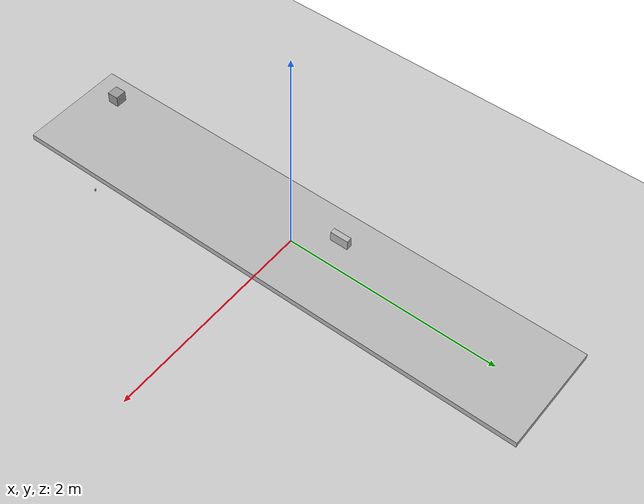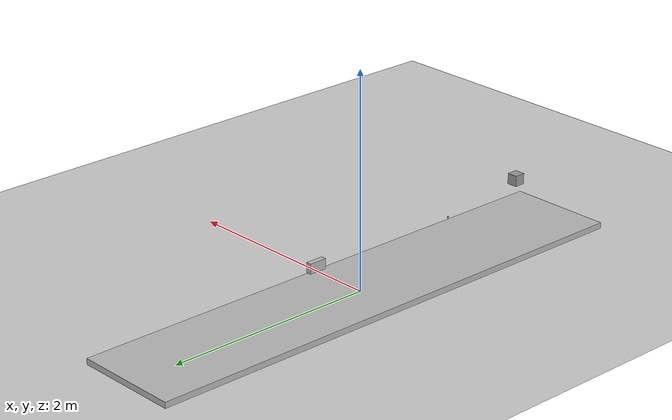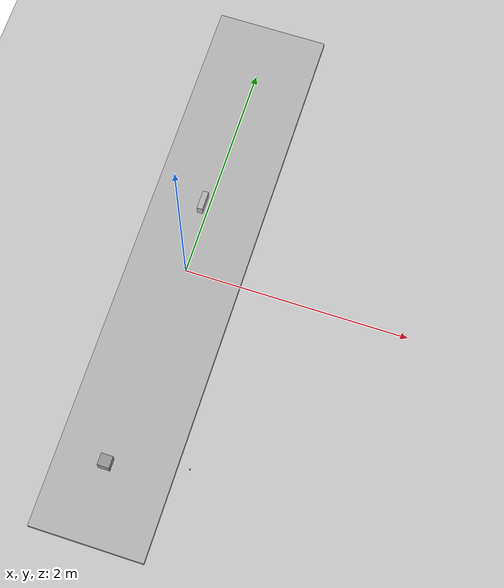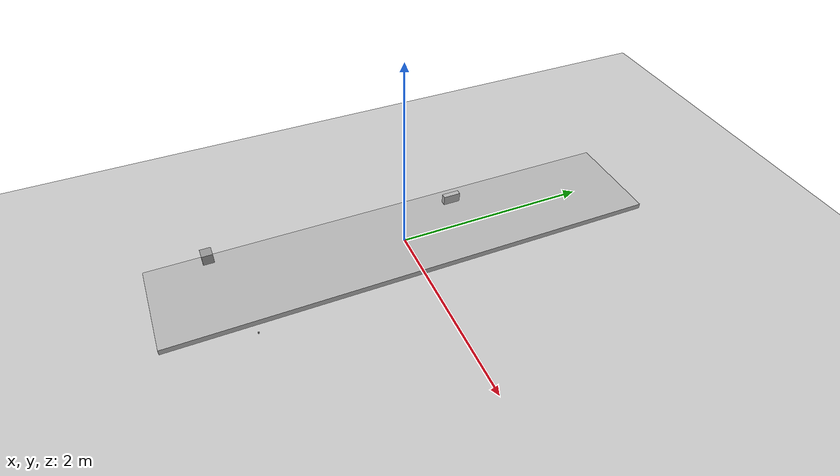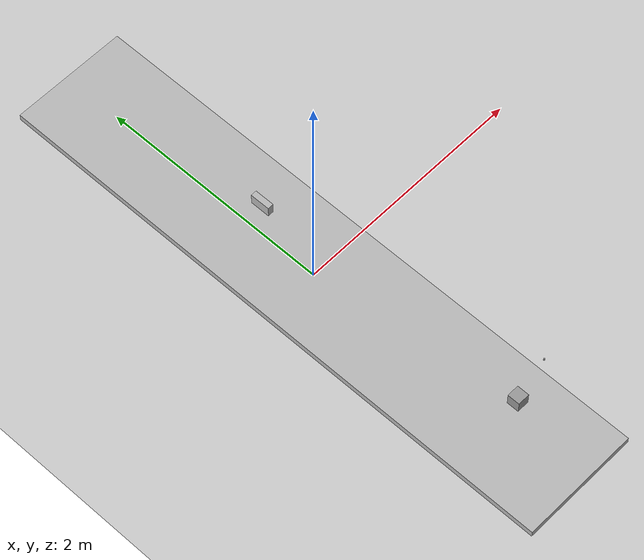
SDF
<sdf version="1.6">
 <world name="default">
  <plugin name="conveyor_controller" filename="libROSConveyorController.so"/>
  <include><uri>model://conveyor_belt</uri><pose>0 -2.5 0 0 0 0</pose></include>
  <include><uri>model://proximity_sensor</uri><pose>0.6 -1.65 -0.01 0 -1.5708 0</pose></include>
  <include><uri>model://laser_profiler</uri><pose>0 0.5 0.4 0 1.5708 -1.5708</pose></include>
  <light name="sun" type="directional">
   <pose>0 0 10 0 -0 0</pose>
   <diffuse>0.8 0.8 0.8 1</diffuse>
   <specular>0.1 0.1 0.1 1</specular>
   <attenuation>
    <range>1000</range>
    <constant>0.9</constant>
    <linear>0.01</linear>
    <quadratic>0.001</quadratic>
   </attenuation>
   <direction>-0.5 0.5 -1</direction>
  </light>
  <model name="ground_plane">
   <static>1</static>
   <link name="link">
    <collision name="collision">
     <geometry><plane><normal>0 0 1</normal><size>100 100</size></plane></geometry>
     <surface><friction><ode><mu>100</mu><mu2>50</mu2></ode></friction></surface>
    </collision>
    <visual name="visual">
     <cast_shadows>0</cast_shadows>
     <geometry><plane><normal>0 0 1</normal><size>100 100</size></plane></geometry>
     <material>
      <script><uri>file://media/materials/scripts/gazebo.material</uri><name>Gazebo/Grey</name></script>
     </material>
    </visual>
   </link>
  </model>
  <gravity>0 0 -9.8</gravity>
  <magnetic_field>6e-06 2.3e-05 -4.2e-05</magnetic_field>
  <atmosphere type="adiabatic"/>
  <physics name="default_physics" default="0" type="ode">
   <max_step_size>0.001</max_step_size>
   <real_time_factor>1</real_time_factor>
   <real_time_update_rate>1000</real_time_update_rate>
  </physics>
  <scene><ambient>0.4 0.4 0.4 1</ambient><background>0.7 0.7 0.7 1</background><shadows>1</shadows></scene>
  <spherical_coordinates>
   <surface_model>EARTH_WGS84</surface_model>
   <latitude_deg>0</latitude_deg>
   <longitude_deg>0</longitude_deg>
   <elevation>0</elevation>
   <heading_deg>0</heading_deg>
  </spherical_coordinates>
  <model name="unit_box">
   <pose>0.0 -1.89638 0.5 0 -0 0</pose>
   <link name="link">
    <inertial>
     <mass>1</mass>
     <inertia>
      <ixx>0.166667</ixx>
      <ixy>0</ixy>
      <ixz>0</ixz>
      <iyy>0.166667</iyy>
      <iyz>0</iyz>
      <izz>0.166667</izz>
     </inertia>
    </inertial>
    <collision name="collision"><geometry><box><size>0.1 0.1 0.1</size></box></geometry></collision>
    <visual name="visual">
     <geometry><box><size>0.1 0.1 0.1</size></box></geometry>
     <material>
      <script><name>Gazebo/Grey</name><uri>file://media/materials/scripts/gazebo.material</uri></script>
     </material>
    </visual>
   </link>
  </model>
 </world>
</sdf>

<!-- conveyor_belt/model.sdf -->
<sdf version="1.6">
    <!-- the origin of this model is at the middle of the 'top' of the belt -->
    <model name="conveyor_belt">
        <static>true</static>
        <plugin name="conveyor_belt_plugin" filename="libROSConveyorBeltPlugin.so">
            <belt_velocity>1.</belt_velocity>
            <velocity_axis>0 1 0</velocity_axis>
            <contact_sensor_name>conveyor_belt_contact</contact_sensor_name>
        </plugin>
        <link name="belt">
            <pose>0 2.5 0 0 0 0</pose>
            <sensor name='conveyor_belt_contact' type='contact'>
                <update_rate>10</update_rate>
                <contact>
                    <collision>belt_collision</collision>
                </contact>
            </sensor>
            <inertial>
                <mass>10</mass>
                <inertia>
                    <ixx>20.841</ixx>
                    <ixy>0</ixy>
                    <ixz>0</ixz>
                    <iyy>0.8417</iyy>
                    <iyz>0</iyz>
                    <izz>21.66667</izz>
                </inertia>
            </inertial>
            <collision name="belt_collision">
            <geometry>
                <box>
                <size>1 5 0.1</size>
                </box>
            </geometry>
            <surface>
                <friction>
                    <ode>
                        <mu>0.0</mu>
                        <mu2>0.0</mu2>
                    </ode>
                    <torsional>
                        <coefficient>1000.0</coefficient>
                        <patch_radius>0.1</patch_radius>
                    </torsional>
                </friction>
            </surface>
            </collision>
            <visual name="visual">
            <geometry>
                <box>
                <size>1 5 0.1</size>
                </box>
            </geometry>
            </visual>
        </link>
    </model>
</sdf>

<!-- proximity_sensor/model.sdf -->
<sdf version="1.6">
  <model name="proximity_sick_mm12">
    <link name="body">
      <visual name="visual">
        <pose>0 0 0 0 1.5708 0</pose>
        <geometry>
          <cylinder>
            <radius>0.006</radius> <!-- diameter of sensing head -->
            <length>0.046</length> <!-- length of sensor body -->
          </cylinder>
        </geometry>
      </visual>
      <collision name="collision">
        <pose>0 0 0 0 1.5708 0</pose>
        <geometry>
          <cylinder>
            <radius>0.006</radius> <!-- diameter of sensing head -->
            <length>0.046</length> <!-- length of sensor body -->
          </cylinder>
        </geometry>
      </collision>
      <sensor name="proximity_sensor" type="ray">
        <plugin name="proximity_ray_plugin" filename="libROSProximityRayPlugin.so" >
          <robotNamespace>ariac</robotNamespace>
          <time_delay>0.02</time_delay><!-- this modifies the update rate of the ray sensor -->
          <!-- the ray sensor doesn't have setters for these yet unfortunately so they have to be set in the ray tags -->
        </plugin>

        <!-- using min angle of 0.005: -->
        <!-- dx = diameter / 0.01 - length -->
        <pose>-1.154 0 0 0 0 0</pose>                   <!-- -dx 0 0 0 0 0 -->
        <ray>
          <range>
            <min>1.214</min>                            <!-- dx + min range -->
            <max>1.274</max>                            <!-- dx + max range -->
            <resolution>0.001</resolution>
          </range>

          <!-- nothing below this line really needs to be modified upon change of sensor model -->

          <scan>
            <horizontal>
              <samples>10</samples>
              <resolution>1</resolution>
              <min_angle>-0.005</min_angle>
              <max_angle>0.005</max_angle>
            </horizontal>
            <vertical>
              <samples>10</samples>
              <resolution>1</resolution>
              <min_angle>-0.005</min_angle>
              <max_angle>0.005</max_angle>
            </vertical>
          </scan>
          <noise>
            <type>gaussian</type>
            <mean>0.0</mean>
            <stddev>0.01</stddev>
          </noise>
        </ray>

        <always_on>1</always_on>
        <visualize>false</visualize>
      </sensor>
      <gravity>false</gravity>
      <inertial>
        <mass>0.1</mass>
      </inertial>
    </link>
    <link name="cord">
      <gravity>false</gravity>
      <visual name="visual">
        <pose>-0.025 0 0 0 1.5708 0</pose>
        <geometry>
          <cylinder>
            <radius>0.001</radius> <!-- diameter of sensing head -->
            <length>0.02</length> <!-- length of sensor body -->
          </cylinder>
        </geometry>
      </visual>
      <collision name="collision">
        <pose>-0.025 0 0 0 1.5708 0</pose>
        <geometry>
          <cylinder>
            <radius>0.001</radius> <!-- diameter of sensing head -->
            <length>0.02</length> <!-- length of sensor body -->
          </cylinder>
        </geometry>
      </collision>
    </link>
  </model>
</sdf>

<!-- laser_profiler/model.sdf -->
<sdf version="1.6">
  <model name="laser-profiler-cognex-ds1101">
    <link name="link">
      <visual name="body">
        <geometry>
          <box>
            <size>0.093 0.05 0.167</size>
          </box>
        </geometry>
      </visual>
      <sensor name="laser_profiler" type="ray">
        <pose>0 0 0.06 0 0 0</pose>
        <plugin name="proximity_ray_plugin" filename="libgazebo_ros_laser.so" >
          <robotNamespace>ariac</robotNamespace>
          <frameName>laser_profiler</frameName>
          <topicName>laser_profiler</topicName>
        </plugin>
        <ray>
          <range>
            <min>0.135</min>
            <max>0.355</max>
            <resolution>0.001</resolution>
          </range>
          <scan>
            <horizontal>
              <samples>100</samples>
              <resolution>1</resolution>
              <min_angle>-0.235</min_angle>
              <max_angle>0.235</max_angle>
            </horizontal>
          </scan>

          <!-- nothing below this line really needs to be modified upon change of sensor model -->

          <noise>
            <type>gaussian</type>
            <mean>0.0</mean>
            <stddev>0.001</stddev>
          </noise>
        </ray>

        <always_on>1</always_on>
        <visualize>true</visualize>
      </sensor>
      <collision name='collision'>
        <pose>0 0 0 0 0 0</pose>
        <geometry>
          <box>
            <size>0.093 0.05 0.167</size>
          </box>
        </geometry>
      </collision>
      <gravity>false</gravity>
      <inertial>
        <mass>0.1</mass>
      </inertial>
    </link>
  </model>
</sdf>
